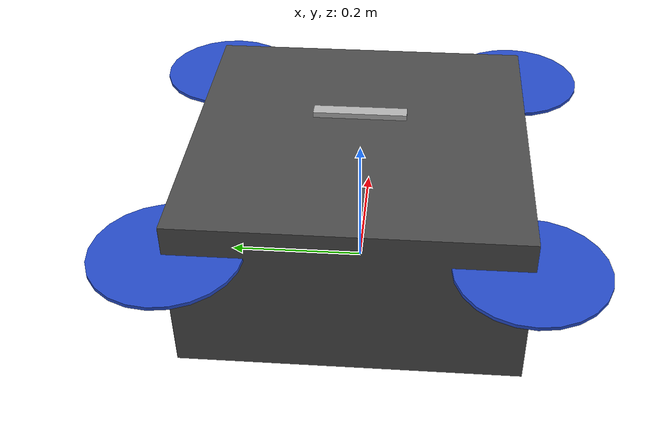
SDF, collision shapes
<?xml version='1.0'?>
<sdf version='1.6'>
  <model name='sentinel'>
    <pose>0 0 0.194923 0 0 0</pose>
    <link name='base_link'>
      <velocity_decay>
        <linear>0.0</linear>
        <angular>0.0</angular>
      </velocity_decay>
      <inertial>
        <pose>0 0 0 0 0 0</pose>
        <mass>1.5</mass>
        <inertia>
          <ixx>0.008</ixx>
          <ixy>0</ixy>
          <ixz>0</ixz>
          <iyy>0.015</iyy>
          <iyz>0</iyz>
          <izz>0.017</izz>
        </inertia>
      </inertial>
      <collision name='base_link_collision'>
        <pose>0 0 -0.08 0 0 0</pose>
        <geometry>
          <box>
            <size>0.47 0.47 0.23</size>
          </box>
        </geometry>
        <surface>
          <contact>
            <ode>
              <max_vel>100.0</max_vel>
              <min_depth>0.001</min_depth>
            </ode>
          </contact>
          <friction>
            <ode>
              <mu>1.0</mu>
              <mu2>1.0</mu2>
            </ode>
          </friction>
        </surface>
      </collision>
      <visual name='base_link_visual'>
        <geometry>
          <mesh>
            <uri>file://Assets/meshes/sentinel.dae</uri>
          </mesh>
        </geometry>
        <material>
          <script>
            <name>Gazebo/DarkGrey</name>
          </script>
        </material>
      </visual>
    </link>
    <link name='sentinel/ground_truth/odometry_sensorgt_link'>
      <pose>0 0 0 0 -0 0</pose>
      <inertial>
        <pose>0 0 0 0 -0 0</pose>
        <mass>0.15</mass>
        <inertia>
          <ixx>0.0001</ixx>
          <ixy>0</ixy>
          <ixz>0</ixz>
          <iyy>0.0002</iyy>
          <iyz>0</iyz>
          <izz>0.0002</izz>
        </inertia>
      </inertial>
    </link>
    <joint name='sentinel/ground_truth/odometry_sensorgt_joint' type='revolute'>
      <child>sentinel/ground_truth/odometry_sensorgt_link</child>
      <parent>base_link</parent>
      <axis>
        <xyz>0 0 1</xyz>
        <limit>
          <lower>0</lower>
          <upper>0</upper>
          <effort>0</effort>
          <velocity>0</velocity>
        </limit>
        <dynamics>
          <damping>1.0</damping>
        </dynamics>
        <use_parent_model_frame>1</use_parent_model_frame>
      </axis>
      <physics>
        <ode>
          <implicit_spring_damper>1</implicit_spring_damper>
        </ode>
      </physics>
    </joint>
    <link name='sentinel/imu_link'>
      <inertial>
        <pose>0 0 0 0 0 0</pose>
        <mass>0.15</mass>
        <inertia>
          <ixx>0.00001</ixx>
          <ixy>0</ixy>
          <ixz>0</ixz>
          <iyy>0.00002</iyy>
          <iyz>0</iyz>
          <izz>0.00002</izz>
        </inertia>
      </inertial>
      <sensor name="imu_sensor" type="imu">
        <pose>0 0 0 3.141593 0 0</pose>
        <always_on>1</always_on>
        <update_rate>1000.0</update_rate>
      </sensor>
    </link>
    <joint name='sentinel/imu_joint' type='revolute'>
      <child>sentinel/imu_link</child>
      <parent>base_link</parent>
      <axis>
        <xyz>0 0 1</xyz>
        <limit>
          <lower>0</lower>
          <upper>0</upper>
          <effort>0</effort>
          <velocity>0</velocity>
        </limit>
        <dynamics>
          <damping>1.0</damping>
        </dynamics>
        <use_parent_model_frame>1</use_parent_model_frame>
      </axis>
      <physics>
        <ode>
          <implicit_spring_damper>1</implicit_spring_damper>
        </ode>
      </physics>
    </joint>
    <link name='rotor_0'>
      <pose>0.23 -0.23 -0.01 0 -0 0</pose>
      <inertial>
        <pose>0 0 0 0 -0 0</pose>
        <mass>0.025</mass>
        <inertia>
          <ixx>9.75e-06</ixx>
          <ixy>0</ixy>
          <ixz>0</ixz>
          <iyy>0.000166704</iyy>
          <iyz>0</iyz>
          <izz>0.000167604</izz>
        </inertia>
      </inertial>
      <collision name='rotor_0_collision'>
        <pose>0 0 0 0 -0 0</pose>
        <geometry>
          <cylinder>
            <length>0.005</length>
            <radius>0.1</radius>
          </cylinder>
        </geometry>
        <surface>
          <contact>
            <ode/>
          </contact>
          <friction>
            <ode/>
          </friction>
        </surface>
      </collision>
      <visual name='rotor_0_visual'>
        <pose>0 0 0 0 -0 0</pose>
        <geometry>
          <mesh>
            <scale>1 1 1</scale>
            <uri>file://Assets/meshes/iris_prop_ccw.dae</uri>
          </mesh>
        </geometry>
        <material>
          <script>
            <name>Gazebo/Blue</name>
            <uri>__default__</uri>
          </script>
        </material>
      </visual>
      <gravity>1</gravity>
      <velocity_decay/>
      <self_collide>0</self_collide>
    </link>
    <joint name='rotor_0_joint' type='revolute'>
      <child>rotor_0</child>
      <parent>base_link</parent>
      <axis>
        <xyz>0 0 1</xyz>
        <limit>
          <lower>-1e+16</lower>
          <upper>1e+16</upper>
        </limit>
        <dynamics>
          <damping>0.004</damping>
        </dynamics>
        <use_parent_model_frame>1</use_parent_model_frame>
      </axis>
      <physics>
        <ode>
          <implicit_spring_damper>1</implicit_spring_damper>
        </ode>
      </physics>
    </joint>
    <link name='rotor_1'>
      <pose>-0.23 0.23 -0.01 0 -0 0</pose>
      <inertial>
        <pose>0 0 0 0 -0 0</pose>
        <mass>0.025</mass>
        <inertia>
          <ixx>9.75e-06</ixx>
          <ixy>0</ixy>
          <ixz>0</ixz>
          <iyy>0.000166704</iyy>
          <iyz>0</iyz>
          <izz>0.000167604</izz>
        </inertia>
      </inertial>
      <collision name='rotor_1_collision'>
        <pose>0 0 0 0 -0 0</pose>
        <geometry>
          <cylinder>
            <length>0.005</length>
            <radius>0.1</radius>
          </cylinder>
        </geometry>
        <surface>
          <contact>
            <ode/>
          </contact>
          <friction>
            <ode/>
          </friction>
        </surface>
      </collision>
      <visual name='rotor_1_visual'>
        <pose>0 0 0 0 -0 0</pose>
        <geometry>
          <mesh>
            <scale>1 1 1</scale>
            <uri>file://Assets/meshes/iris_prop_ccw.dae</uri>
          </mesh>
        </geometry>
        <material>
          <script>
            <name>Gazebo/Blue</name>
            <uri>__default__</uri>
          </script>
        </material>
      </visual>
      <gravity>1</gravity>
      <velocity_decay/>
      <self_collide>0</self_collide>
    </link>
    <joint name='rotor_1_joint' type='revolute'>
      <child>rotor_1</child>
      <parent>base_link</parent>
      <axis>
        <xyz>0 0 1</xyz>
        <limit>
          <lower>-1e+16</lower>
          <upper>1e+16</upper>
        </limit>
        <dynamics>
          <damping>0.004</damping>
        </dynamics>
        <use_parent_model_frame>1</use_parent_model_frame>
      </axis>
      <physics>
        <ode>
          <implicit_spring_damper>1</implicit_spring_damper>
        </ode>
      </physics>
    </joint>
    <link name='rotor_2'>
      <pose>0.23 0.23 -0.01 0 -0 0</pose>
      <inertial>
        <pose>0 0 0 0 -0 0</pose>
        <mass>0.025</mass>
        <inertia>
          <ixx>9.75e-06</ixx>
          <ixy>0</ixy>
          <ixz>0</ixz>
          <iyy>0.000166704</iyy>
          <iyz>0</iyz>
          <izz>0.000167604</izz>
        </inertia>
      </inertial>
      <collision name='rotor_2_collision'>
        <pose>0 0 0 0 -0 0</pose>
        <geometry>
          <cylinder>
            <length>0.005</length>
            <radius>0.1</radius>
          </cylinder>
        </geometry>
        <surface>
          <contact>
            <ode/>
          </contact>
          <friction>
            <ode/>
          </friction>
        </surface>
      </collision>
      <visual name='rotor_2_visual'>
        <pose>0 0 0 0 -0 0</pose>
        <geometry>
          <mesh>
            <scale>1 1 1</scale>
            <uri>file://Assets/meshes/iris_prop_cw.dae</uri>
          </mesh>
        </geometry>
        <material>
          <script>
            <name>Gazebo/Blue</name>
            <uri>__default__</uri>
          </script>
        </material>
      </visual>
      <gravity>1</gravity>
      <velocity_decay/>
      <self_collide>0</self_collide>
    </link>
    <joint name='rotor_2_joint' type='revolute'>
      <child>rotor_2</child>
      <parent>base_link</parent>
      <axis>
        <xyz>0 0 1</xyz>
        <limit>
          <lower>-1e+16</lower>
          <upper>1e+16</upper>
        </limit>
        <dynamics>
          <damping>0.004</damping>
        </dynamics>
        <use_parent_model_frame>1</use_parent_model_frame>
      </axis>
      <physics>
        <ode>
          <implicit_spring_damper>1</implicit_spring_damper>
        </ode>
      </physics>
    </joint>
    <link name='rotor_3'>
      <pose>-0.23 -0.23 -0.01 0 -0 0</pose>
      <inertial>
        <pose>0 0 0 0 -0 0</pose>
        <mass>0.025</mass>
        <inertia>
          <ixx>9.75e-06</ixx>
          <ixy>0</ixy>
          <ixz>0</ixz>
          <iyy>0.000166704</iyy>
          <iyz>0</iyz>
          <izz>0.000167604</izz>
        </inertia>
      </inertial>
      <collision name='rotor_3_collision'>
        <pose>0 0 0 0 -0 0</pose>
        <geometry>
          <cylinder>
            <length>0.005</length>
            <radius>0.1</radius>
          </cylinder>
        </geometry>
        <surface>
          <contact>
            <ode/>
          </contact>
          <friction>
            <ode/>
          </friction>
        </surface>
      </collision>
      <visual name='rotor_3_visual'>
        <pose>0 0 0 0 -0 0</pose>
        <geometry>
          <mesh>
            <scale>1 1 1</scale>
            <uri>file://Assets/meshes/iris_prop_cw.dae</uri>
          </mesh>
        </geometry>
        <material>
          <script>
            <name>Gazebo/Blue</name>
            <uri>__default__</uri>
          </script>
        </material>
      </visual>
      <gravity>1</gravity>
      <velocity_decay/>
      <self_collide>0</self_collide>
    </link>
    <joint name='rotor_3_joint' type='revolute'>
      <child>rotor_3</child>
      <parent>base_link</parent>
      <axis>
        <xyz>0 0 1</xyz>
        <limit>
          <lower>-1e+16</lower>
          <upper>1e+16</upper>
        </limit>
        <dynamics>
          <damping>0.004</damping>
        </dynamics>
        <use_parent_model_frame>1</use_parent_model_frame>
      </axis>
      <physics>
        <ode>
          <implicit_spring_damper>1</implicit_spring_damper>
        </ode>
      </physics>
    </joint>
    <static>0</static>

        <joint name="camera_mount" type="fixed">
      <child>realsense_camera::link</child>
      <parent>Sentinel::sentinel::base_link</parent>
      <axis>
        <xyz>0 0 1</xyz>
        <limit>
          <upper>0</upper>
          <lower>0</lower>
        </limit>
      </axis>
    </joint>

    <model name='realsense_camera'>
      <plugin name='realsense_plugin' filename='libRealSensePlugin.so'/>
      <pose frame=''>0 0 .065 3.14159 1.56129 3.14159</pose>
      <link name='link'>
        <inertial>
          <mass>0.0615752</mass>
          <inertia>
            <ixx>9.108e-05</ixx>
            <ixy>0</ixy>
            <ixz>0</ixz>
            <iyy>2.51e-06</iyy>
            <iyz>0</iyz>
            <izz>8.931e-05</izz>
          </inertia>
          <pose frame=''>0 0 0 0 -0 0</pose>
        </inertial>
        <self_collide>0</self_collide>
        <enable_wind>0</enable_wind>
        <kinematic>0</kinematic>
        <gravity>1</gravity>
        <visual name='visual'>
          <geometry>
            <mesh>
              <uri>model://realsense_camera/meshes/realsense.dae</uri>
            </mesh>
          </geometry>
        </visual>
        <collision name='collision'>
          <laser_retro>0</laser_retro>
          <max_contacts>10</max_contacts>
          <pose frame=''>0 0 0 0 -0 0</pose>
          <geometry>
            <box>
              <size>0.0078 0.13 0.0192</size>
            </box>
          </geometry>
          <surface>
            <friction>
              <ode>
                <mu>1</mu>
                <mu2>1</mu2>
                <fdir1>0 0 0</fdir1>
                <slip1>0</slip1>
                <slip2>0</slip2>
              </ode>
              <torsional>
                <coefficient>1</coefficient>
                <patch_radius>0</patch_radius>
                <surface_radius>0</surface_radius>
                <use_patch_radius>1</use_patch_radius>
                <ode>
                  <slip>0</slip>
                </ode>
              </torsional>
            </friction>
            <bounce>
              <restitution_coefficient>0</restitution_coefficient>
              <threshold>1e+06</threshold>
            </bounce>
            <contact>
              <collide_without_contact>0</collide_without_contact>
              <collide_without_contact_bitmask>1</collide_without_contact_bitmask>
              <collide_bitmask>1</collide_bitmask>
              <ode>
                <soft_cfm>0</soft_cfm>
                <soft_erp>0.2</soft_erp>
                <kp>1e+13</kp>
                <kd>1</kd>
                <max_vel>0.01</max_vel>
                <min_depth>0</min_depth>
              </ode>
              <bullet>
                <split_impulse>1</split_impulse>
                <split_impulse_penetration_threshold>-0.01</split_impulse_penetration_threshold>
                <soft_cfm>0</soft_cfm>
                <soft_erp>0.2</soft_erp>
                <kp>1e+13</kp>
                <kd>1</kd>
              </bullet>
            </contact>
          </surface>
        </collision>
        <sensor name='color' type='camera'>
          <pose frame=''>0 -0.046 0.004 0 0 0</pose>
          <camera name='__default__'>
            <horizontal_fov>1.047</horizontal_fov>
            <image>
              <width>640</width>
              <height>480</height>
              <format>RGB_INT8</format>
            </image>
            <clip>
              <near>0.1</near>
              <far>100</far>
            </clip>
            <noise>
              <type>gaussian</type>
              <mean>0</mean>
              <stddev>0.007</stddev>
            </noise>
          </camera>
          <always_on>1</always_on>
          <update_rate>60</update_rate>
          <visualize>0</visualize>
        </sensor>
        <sensor name='ired1' type='camera'>
          <pose frame=''>0 -0.06 0.004 0 -0 0</pose>
          <camera name='__default__'>
            <horizontal_fov>1.047</horizontal_fov>
            <image>
              <width>640</width>
              <height>480</height>
              <format>L_INT8</format>
            </image>
            <clip>
              <near>0.1</near>
              <far>100</far>
            </clip>
            <noise>
              <type>gaussian</type>
              <mean>0</mean>
              <stddev>0.007</stddev>
            </noise>
          </camera>
          <always_on>0</always_on>
          <update_rate>60</update_rate>
          <visualize>0</visualize>
        </sensor>
        <sensor name='ired2' type='camera'>
          <pose frame=''>0 0.01 0.004 0 -0 0</pose>
          <camera name='__default__'>
            <horizontal_fov>1.047</horizontal_fov>
            <image>
              <width>640</width>
              <height>480</height>
              <format>L_INT8</format>
            </image>
            <clip>
              <near>0.1</near>
              <far>100</far>
            </clip>
            <noise>
              <type>gaussian</type>
              <mean>0</mean>
              <stddev>0.007</stddev>
            </noise>
          </camera>
          <always_on>0</always_on>
          <update_rate>60</update_rate>
          <visualize>0</visualize>
        </sensor>
        <sensor name='depth' type='depth'>
          <pose frame=''>0 -0.03 0.004 0 -0 0</pose>
          <camera name='__default__'>
            <horizontal_fov>1.047</horizontal_fov>
            <image>
              <width>640</width>
              <height>480</height>
            </image>
            <clip>
              <near>0.1</near>
              <far>100</far>
            </clip>
            <noise>
              <type>gaussian</type>
              <mean>0</mean>
              <stddev>0.007</stddev>
            </noise>
          </camera>
          <always_on>1</always_on>
          <update_rate>60</update_rate>
          <visualize>0</visualize>
        </sensor>
      </link>
    </model>
    <!-- plugins -->
    <plugin name="rotor_0_blade_1" filename="libLiftDragPlugin.so">
      <a0>0.3</a0>
      <alpha_stall>1.4</alpha_stall>
      <cla>4.2500</cla>
      <cda>0.10</cda>
      <cma>0.00</cma>
      <cla_stall>-0.025</cla_stall>
      <cda_stall>0.0</cda_stall>
      <cma_stall>0.0</cma_stall>
      <area>0.002</area>
      <air_density>1.2041</air_density>
      <cp>0.084 0 0</cp>
      <forward>0 1 0</forward>
      <upward>0 0 1</upward>
      <link_name>Sentinel::sentinel::rotor_0</link_name>
    </plugin>
    <plugin name="rotor_0_blade_2" filename="libLiftDragPlugin.so">
      <a0>0.3</a0>
      <alpha_stall>1.4</alpha_stall>
      <cla>4.2500</cla>
      <cda>0.10</cda>
      <cma>0.00</cma>
      <cla_stall>-0.025</cla_stall>
      <cda_stall>0.0</cda_stall>
      <cma_stall>0.0</cma_stall>
      <area>0.002</area>
      <air_density>1.2041</air_density>
      <cp>-0.084 0 0</cp>
      <forward>0 -1 0</forward>
      <upward>0 0 1</upward>
      <link_name>Sentinel::sentinel::rotor_0</link_name>
    </plugin>

    <plugin name="rotor_1_blade_1" filename="libLiftDragPlugin.so">
      <a0>0.3</a0>
      <alpha_stall>1.4</alpha_stall>
      <cla>4.2500</cla>
      <cda>0.10</cda>
      <cma>0.00</cma>
      <cla_stall>-0.025</cla_stall>
      <cda_stall>0.0</cda_stall>
      <cma_stall>0.0</cma_stall>
      <area>0.002</area>
      <air_density>1.2041</air_density>
      <cp>0.084 0 0</cp>
      <forward>0 1 0</forward>
      <upward>0 0 1</upward>
      <link_name>Sentinel::sentinel::rotor_1</link_name>
    </plugin>
    <plugin name="rotor_1_blade_2" filename="libLiftDragPlugin.so">
      <a0>0.3</a0>
      <alpha_stall>1.4</alpha_stall>
      <cla>4.2500</cla>
      <cda>0.10</cda>
      <cma>0.00</cma>
      <cla_stall>-0.025</cla_stall>
      <cda_stall>0.0</cda_stall>
      <cma_stall>0.0</cma_stall>
      <area>0.002</area>
      <air_density>1.2041</air_density>
      <cp>-0.084 0 0</cp>
      <forward>0 -1 0</forward>
      <upward>0 0 1</upward>
      <link_name>Sentinel::sentinel::rotor_1</link_name>
    </plugin>

    <plugin name="rotor_2_blade_1" filename="libLiftDragPlugin.so">
      <a0>0.3</a0>
      <alpha_stall>1.4</alpha_stall>
      <cla>4.2500</cla>
      <cda>0.10</cda>
      <cma>0.00</cma>
      <cla_stall>-0.025</cla_stall>
      <cda_stall>0.0</cda_stall>
      <cma_stall>0.0</cma_stall>
      <area>0.002</area>
      <air_density>1.2041</air_density>
      <cp>0.084 0 0</cp>
      <forward>0 -1 0</forward>
      <upward>0 0 1</upward>
      <link_name>Sentinel::sentinel::rotor_2</link_name>
    </plugin>
    <plugin name="rotor_2_blade_2" filename="libLiftDragPlugin.so">
      <a0>0.3</a0>
      <alpha_stall>1.4</alpha_stall>
      <cla>4.2500</cla>
      <cda>0.10</cda>
      <cma>0.00</cma>
      <cla_stall>-0.025</cla_stall>
      <cda_stall>0.0</cda_stall>
      <cma_stall>0.0</cma_stall>
      <area>0.002</area>
      <air_density>1.2041</air_density>
      <cp>-0.084 0 0</cp>
      <forward>0 1 0</forward>
      <upward>0 0 1</upward>
      <link_name>Sentinel::sentinel::rotor_2</link_name>
    </plugin>

    <plugin name="rotor_3_blade_1" filename="libLiftDragPlugin.so">
      <a0>0.3</a0>
      <alpha_stall>1.4</alpha_stall>
      <cla>4.2500</cla>
      <cda>0.10</cda>
      <cma>0.00</cma>
      <cla_stall>-0.025</cla_stall>
      <cda_stall>0.0</cda_stall>
      <cma_stall>0.0</cma_stall>
      <area>0.002</area>
      <air_density>1.2041</air_density>
      <cp>0.084 0 0</cp>
      <forward>0 -1 0</forward>
      <upward>0 0 1</upward>
      <link_name>Sentinel::sentinel::rotor_3</link_name>
    </plugin>
    <plugin name="rotor_3_blade_2" filename="libLiftDragPlugin.so">
      <a0>0.3</a0>
      <alpha_stall>1.4</alpha_stall>
      <cla>4.2500</cla>
      <cda>0.10</cda>
      <cma>0.00</cma>
      <cla_stall>-0.025</cla_stall>
      <cda_stall>0.0</cda_stall>
      <cma_stall>0.0</cma_stall>
      <area>0.002</area>
      <air_density>1.2041</air_density>
      <cp>-0.084 0 0</cp>
      <forward>0 1 0</forward>
      <upward>0 0 1</upward>
      <link_name>Sentinel::sentinel::rotor_3</link_name>
    </plugin>
    <plugin name="arducopter_plugin" filename="libArduPilotPlugin.so">
      <fdm_addr>127.0.0.1</fdm_addr>
      <fdm_port_in>9002</fdm_port_in>
      <fdm_port_out>9003</fdm_port_out>
      <!--
          Require by APM :
          Only change model and gazebo from XYZ to XY-Z coordinates
      -->
      <modelXYZToAirplaneXForwardZDown>0 0 0 3.141593 0 0</modelXYZToAirplaneXForwardZDown>
      <gazeboXYZToNED>0 0 0 3.141593 0 0</gazeboXYZToNED>
      <imuName>Sentinel::sentinel::sentinel/imu_link::imu_sensor</imuName>
      <connectionTimeoutMaxCount>5</connectionTimeoutMaxCount>
      <control channel="0">
      <!--
          incoming control command [0, 1]
          so offset it by 0 to get [0, 1]
          and divide max target by 1.
          offset = 0
          multiplier = 838 max rpm / 1 = 838
        -->
        <type>VELOCITY</type>
        <offset>0</offset>
        <p_gain>0.20</p_gain>
        <i_gain>0</i_gain>
        <d_gain>0</d_gain>
        <i_max>0</i_max>
        <i_min>0</i_min>
        <cmd_max>2.5</cmd_max>
        <cmd_min>-2.5</cmd_min>
        <jointName>Sentinel::sentinel::rotor_0_joint</jointName>
        <multiplier>838</multiplier>
        <controlVelocitySlowdownSim>1</controlVelocitySlowdownSim>
      </control>
      <control channel="1">
        <type>VELOCITY</type>
        <offset>0</offset>
        <p_gain>0.20</p_gain>
        <i_gain>0</i_gain>
        <d_gain>0</d_gain>
        <i_max>0</i_max>
        <i_min>0</i_min>
        <cmd_max>2.5</cmd_max>
        <cmd_min>-2.5</cmd_min>
        <jointName>Sentinel::sentinel::rotor_1_joint</jointName>
        <multiplier>838</multiplier>
        <controlVelocitySlowdownSim>1</controlVelocitySlowdownSim>
      </control>
      <control channel="2">
        <type>VELOCITY</type>
        <offset>0</offset>
        <p_gain>0.20</p_gain>
        <i_gain>0</i_gain>
        <d_gain>0</d_gain>
        <i_max>0</i_max>
        <i_min>0</i_min>
        <cmd_max>2.5</cmd_max>
        <cmd_min>-2.5</cmd_min>
        <jointName>Sentinel::sentinel::rotor_2_joint</jointName>
        <multiplier>-838</multiplier>
        <controlVelocitySlowdownSim>1</controlVelocitySlowdownSim>
      </control>
      <control channel="3">
        <type>VELOCITY</type>
        <offset>0</offset>
        <p_gain>0.20</p_gain>
        <i_gain>0</i_gain>
        <d_gain>0</d_gain>
        <i_max>0</i_max>
        <i_min>0</i_min>
        <cmd_max>2.5</cmd_max>
        <cmd_min>-2.5</cmd_min>
        <jointName>Sentinel::sentinel::rotor_3_joint</jointName>
        <multiplier>-838</multiplier>
        <controlVelocitySlowdownSim>1</controlVelocitySlowdownSim>
      </control>
    </plugin>
  </model>
</sdf>
